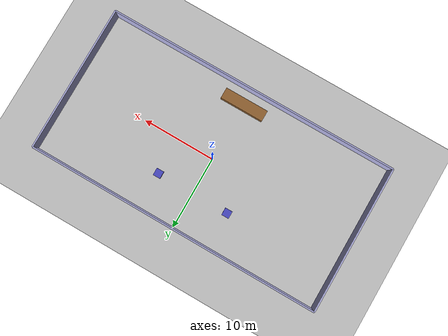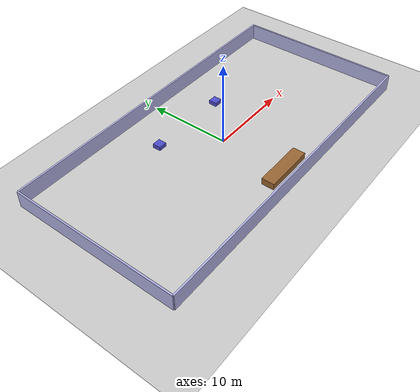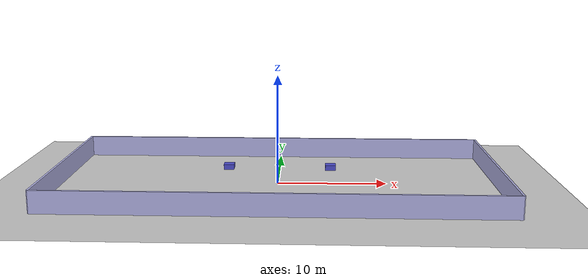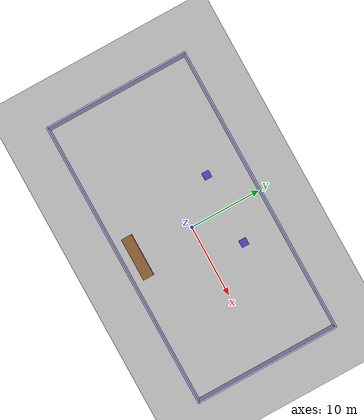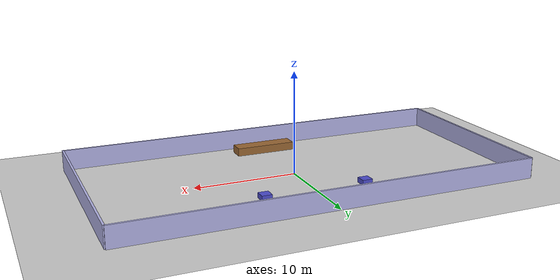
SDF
<?xml version="1.0" ?>
<sdf version="1.6">
  <world name="hotel_reception_expanded">

    <!-- Physics -->
    <physics type="ode">
      <gravity>0 0 -9.81</gravity>
      <ode>
        <solver>
          <type>quick</type>
          <iters>50</iters>
          <sor>1.0</sor>
        </solver>
        <constraints>
          <cfm>0.0</cfm>
          <erp>0.2</erp>
          <contact_max_correcting_vel>100.0</contact_max_correcting_vel>
          <contact_surface_layer>0.0</contact_surface_layer>
        </constraints>
      </ode>
      <real_time_update_rate>1000</real_time_update_rate>
      <max_step_size>0.001</max_step_size>
    </physics>

    <!-- Lighting -->
    <light type="directional" name="sun">
      <cast_shadows>true</cast_shadows>
      <pose>0 0 10 0 0 0</pose>
      <diffuse>0.8 0.8 0.8 1</diffuse>
      <specular>0.2 0.2 0.2 1</specular>
      <attenuation>
        <range>1000</range>
        <constant>0.9</constant>
        <linear>0.01</linear>
        <quadratic>0.001</quadratic>
      </attenuation>
      <direction>-0.5 0.1 -0.9</direction>
    </light>

    <!-- Ground Plane -->
    <model name="ground_plane">
      <static>true</static>
      <link name="link">
        <collision name="collision">
          <geometry>
            <plane>
              <normal>0 0 1</normal>
              <size>100 100</size>
            </plane>
          </geometry>
        </collision>
        <visual name="visual">
          <geometry>
            <plane>
              <normal>0 0 1</normal>
              <size>100 100</size>
            </plane>
          </geometry>
          <material>
            <ambient>0.8 0.8 0.8 1</ambient>
            <diffuse>0.8 0.8 0.8 1</diffuse>
          </material>
        </visual>
      </link>
    </model>

    <!-- Hospital Building Walls -->
    <model name="hospital_wall_1">
      <static>true</static>
      <pose>0 -10 1 0 0 0</pose>
      <link name="link">
        <collision name="collision">
          <geometry>
            <box>
              <size>40 0.2 2</size>
            </box>
          </geometry>
        </collision>
        <visual name="visual">
          <geometry>
            <box>
              <size>40 0.2 2</size>
            </box>
          </geometry>
          <material>
            <ambient>0.7 0.7 0.9 1</ambient>
            <diffuse>0.7 0.7 0.9 1</diffuse>
          </material>
        </visual>
      </link>
    </model>

    <model name="hospital_wall_2">
      <static>true</static>
      <pose>0 10 1 0 0 0</pose>
      <link name="link">
        <collision name="collision">
          <geometry>
            <box>
              <size>40 0.2 2</size>
            </box>
          </geometry>
        </collision>
        <visual name="visual">
          <geometry>
            <box>
              <size>40 0.2 2</size>
            </box>
          </geometry>
          <material>
            <ambient>0.7 0.7 0.9 1</ambient>
            <diffuse>0.7 0.7 0.9 1</diffuse>
          </material>
        </visual>
      </link>
    </model>

    <model name="hospital_wall_3">
      <static>true</static>
      <pose>-20 0 1 0 0 1.5708</pose>
      <link name="link">
        <collision name="collision">
          <geometry>
            <box>
              <size>20 0.2 2</size>
            </box>
          </geometry>
        </collision>
        <visual name="visual">
          <geometry>
            <box>
              <size>20 0.2 2</size>
            </box>
          </geometry>
          <material>
            <ambient>0.7 0.7 0.9 1</ambient>
            <diffuse>0.7 0.7 0.9 1</diffuse>
          </material>
        </visual>
      </link>
    </model>

    <model name="hospital_wall_4">
      <static>true</static>
      <pose>20 0 1 0 0 1.5708</pose>
      <link name="link">
        <collision name="collision">
          <geometry>
            <box>
              <size>20 0.2 2</size>
            </box>
          </geometry>
        </collision>
        <visual name="visual">
          <geometry>
            <box>
              <size>20 0.2 2</size>
            </box>
          </geometry>
          <material>
            <ambient>0.7 0.7 0.9 1</ambient>
            <diffuse>0.7 0.7 0.9 1</diffuse>
          </material>
        </visual>
      </link>
    </model>

    <!-- Interior Obstacles (Reception Desk, Chairs, Tables) -->
    <model name="reception_desk">
      <static>true</static>
      <pose>0 -8 0.4 0 0 0</pose>
      <link name="link">
        <collision name="collision">
          <geometry>
            <box>
              <size>6 1.5 0.8</size>
            </box>
          </geometry>
        </collision>
        <visual name="visual">
          <geometry>
            <box>
              <size>6 1.5 0.8</size>
            </box>
          </geometry>
          <material>
            <ambient>0.6 0.4 0.2 1</ambient>
            <diffuse>0.6 0.4 0.2 1</diffuse>
          </material>
        </visual>
      </link>
    </model>

    <model name="waiting_chairs_1">
      <static>true</static>
      <pose>-5 5 0.25 0 0 0</pose>
      <link name="link">
        <collision name="collision">
          <geometry>
            <box>
              <size>1 1 0.5</size>
            </box>
          </geometry>
        </collision>
        <visual name="visual">
          <geometry>
            <box>
              <size>1 1 0.5</size>
            </box>
          </geometry>
          <material>
            <ambient>0.3 0.3 0.8 1</ambient>
            <diffuse>0.3 0.3 0.8 1</diffuse>
          </material>
        </visual>
      </link>
    </model>

    <model name="waiting_chairs_2">
      <static>true</static>
      <pose>5 5 0.25 0 0 3.14159</pose>
      <link name="link">
        <collision name="collision">
          <geometry>
            <box>
              <size>1 1 0.5</size>
            </box>
          </geometry>
        </collision>
        <visual name="visual">
          <geometry>
            <box>
              <size>1 1 0.5</size>
            </box>
          </geometry>
          <material>
            <ambient>0.3 0.3 0.8 1</ambient>
            <diffuse>0.3 0.3 0.8 1</diffuse>
          </material>
        </visual>
      </link>
    </model>

    <!-- Scene/Camera -->
    <scene>
      <ambient>0.4 0.4 0.4 1</ambient>
      <background>0.7 0.7 0.7 1</background>
      <shadows>true</shadows>
    </scene>

    <gui fullscreen="0">
      <camera name="user_camera">
        <pose>25 -25 15 0 0.5 2.35</pose>
        <view_controller>orbit</view_controller>
      </camera>
    </gui>

  </world>
</sdf>
